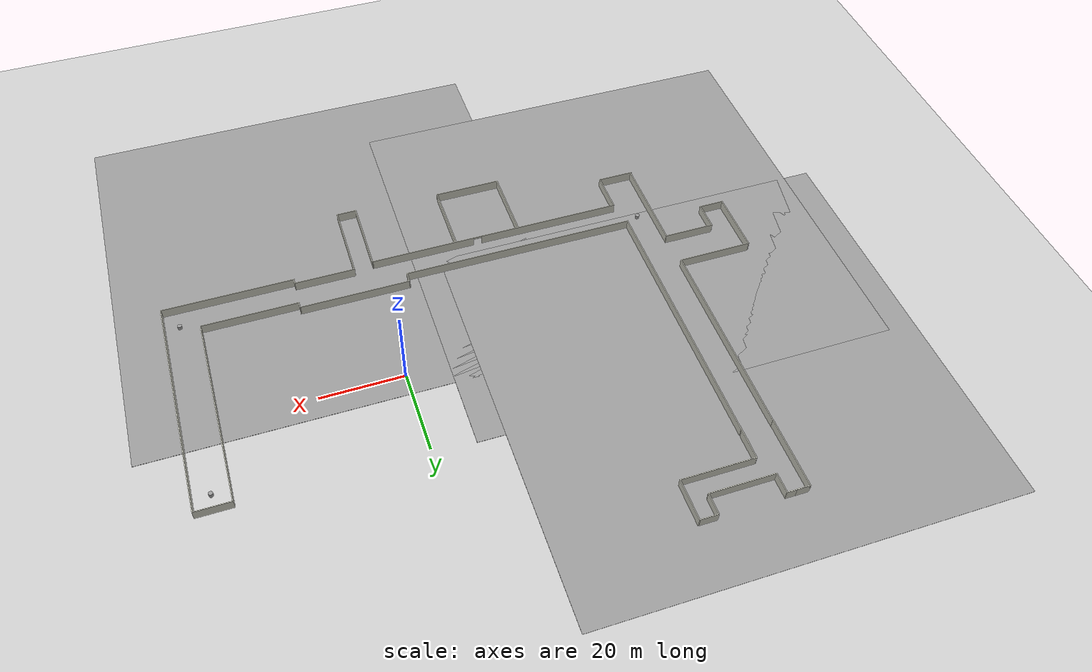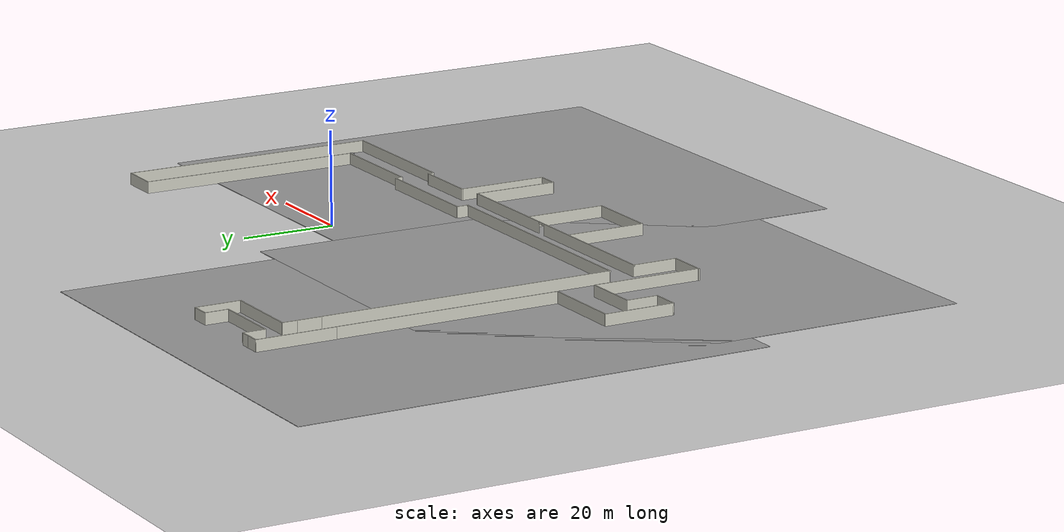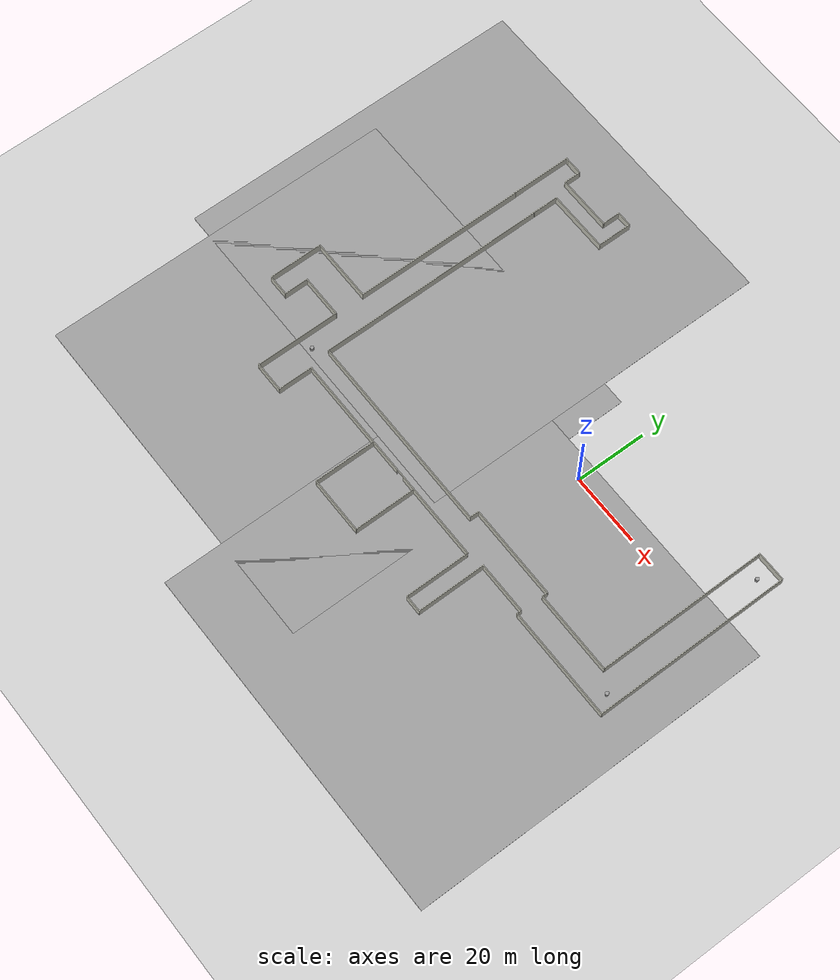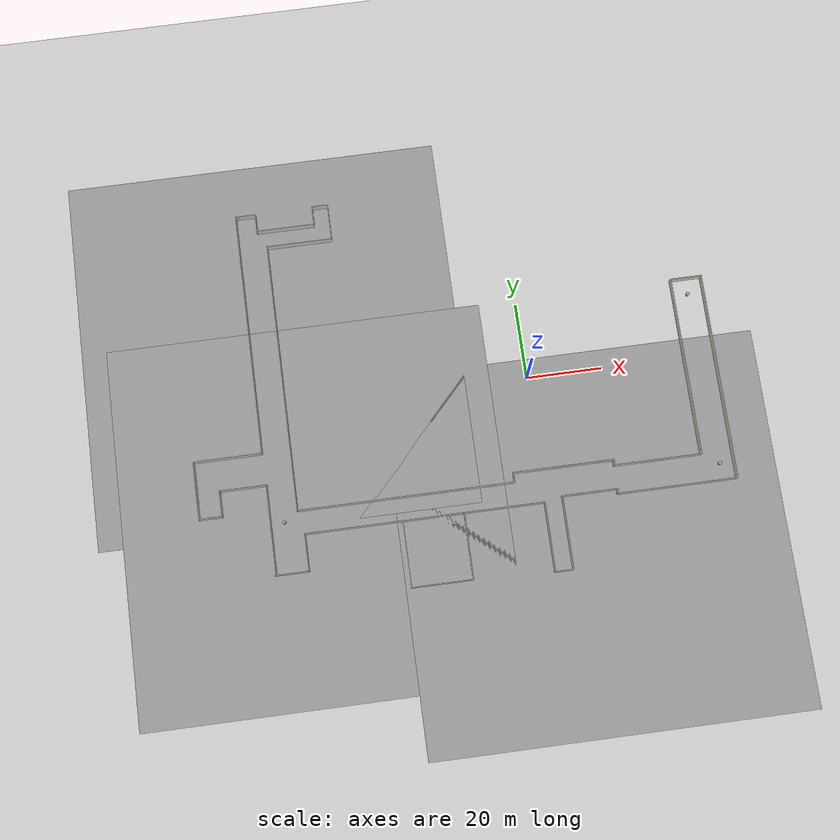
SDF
<sdf version="1.4">
 <world name="default">
  <light name="sun" type="directional">
   <pose>0 0 10 0 -0 0</pose>
   <diffuse>0.8 0.8 0.8 1</diffuse>
   <specular>0.2 0.2 0.2 1</specular>
   <attenuation>
    <range>1000</range>
    <constant>0.9</constant>
    <linear>0.01</linear>
    <quadratic>0.001</quadratic>
   </attenuation>
   <direction>-0.5 0.1 -0.9</direction>
  </light>
  <model name="ground_plane">
   <static>1</static>
   <link name="link">
    <collision name="collision">
     <geometry><plane><normal>0 0 1</normal><size>100 100</size></plane></geometry>
     <surface><friction><ode><mu>100</mu><mu2>50</mu2></ode></friction></surface>
    </collision>
    <visual name="visual">
     <cast_shadows>0</cast_shadows>
     <geometry><plane><normal>0 0 1</normal><size>100 100</size></plane></geometry>
     <material>
      <script><uri>file://media/materials/scripts/gazebo.material</uri><name>Gazebo/Grey</name></script>
     </material>
    </visual>
    <velocity_decay><linear>0</linear><angular>0</angular></velocity_decay>
   </link>
  </model>
  <physics type="ode">
   <max_step_size>0.001</max_step_size>
   <real_time_factor>1</real_time_factor>
   <real_time_update_rate>1000</real_time_update_rate>
   <gravity>0 0 -9.8</gravity>
  </physics>
  <scene><ambient>0.4 0.4 0.4 1</ambient><background>0.7 0.7 0.7 1</background><shadows>1</shadows></scene>
  <spherical_coordinates>
   <surface_model>EARTH_WGS84</surface_model>
   <latitude_deg>0</latitude_deg>
   <longitude_deg>0</longitude_deg>
   <elevation>0</elevation>
   <heading_deg>0</heading_deg>
  </spherical_coordinates>
  <model name="esat">
   <link name="Wall_27">
    <collision name="Wall_27_Collision">
     <geometry><box><size>47.7427 0.2 2.5</size></box></geometry>
     <pose>0 0 1.25 0 -0 0</pose>
    </collision>
    <visual name="Wall_27_Visual">
     <pose>0 0 1.25 0 -0 0</pose>
     <geometry><box><size>47.7427 0.2 2.5</size></box></geometry>
     <material>
      <script><uri>file://media/materials/scripts/gazebo.material</uri><name>Gazebo/PaintedWall</name></script>
     </material>
    </visual>
    <velocity_decay><linear>0</linear><angular>0</angular></velocity_decay>
    <pose>6.80118 1.41072 0 0 -0 1.5708</pose>
   </link>
   <link name="Wall_28">
    <collision name="Wall_28_Collision">
     <geometry><box><size>8.41418 0.2 2.5</size></box></geometry>
     <pose>0 0 1.25 0 -0 0</pose>
    </collision>
    <visual name="Wall_28_Visual">
     <pose>0 0 1.25 0 -0 0</pose>
     <geometry><box><size>8.41418 0.2 2.5</size></box></geometry>
     <material>
      <script><uri>file://media/materials/scripts/gazebo.material</uri><name>Gazebo/PaintedWall</name></script>
     </material>
    </visual>
    <velocity_decay><linear>0</linear><angular>0</angular></velocity_decay>
    <pose>10.9083 25.1821 0 0 -0 0</pose>
   </link>
   <link name="Wall_29">
    <collision name="Wall_29_Collision">
     <geometry><box><size>55.459 0.2 2.5</size></box></geometry>
     <pose>0 0 1.25 0 -0 0</pose>
    </collision>
    <visual name="Wall_29_Visual">
     <pose>0 0 1.25 0 -0 0</pose>
     <geometry><box><size>55.459 0.2 2.5</size></box></geometry>
     <material>
      <script><uri>file://media/materials/scripts/gazebo.material</uri><name>Gazebo/PaintedWall</name></script>
     </material>
    </visual>
    <velocity_decay><linear>0</linear><angular>0</angular></velocity_decay>
    <pose>15.0154 -2.44746 0 0 0 -1.5708</pose>
   </link>
   <link name="Wall_30">
    <collision name="Wall_30_Collision">
     <geometry><box><size>31.5632 0.2 2.5</size></box></geometry>
     <pose>0 0 1.25 0 -0 0</pose>
    </collision>
    <visual name="Wall_30_Visual">
     <pose>0 0 1.25 0 -0 0</pose>
     <geometry><box><size>31.5632 0.2 2.5</size></box></geometry>
     <material>
      <script><uri>file://media/materials/scripts/gazebo.material</uri><name>Gazebo/PaintedWall</name></script>
     </material>
    </visual>
    <velocity_decay><linear>0</linear><angular>0</angular></velocity_decay>
    <pose>-0.666259 -30.077 0 0 -0 3.14159</pose>
   </link>
   <link name="Wall_31">
    <collision name="Wall_31_Collision">
     <geometry><box><size>1.44457 0.2 2.5</size></box></geometry>
     <pose>0 0 1.25 0 -0 0</pose>
    </collision>
    <visual name="Wall_31_Visual">
     <pose>0 0 1.25 0 -0 0</pose>
     <geometry><box><size>1.44457 0.2 2.5</size></box></geometry>
     <material>
      <script><uri>file://media/materials/scripts/gazebo.material</uri><name>Gazebo/PaintedWall</name></script>
     </material>
    </visual>
    <velocity_decay><linear>0</linear><angular>0</angular></velocity_decay>
    <pose>-16.3479 -29.4547 0 0 -0 1.5708</pose>
   </link>
   <link name="Wall_32">
    <collision name="Wall_32_Collision">
     <geometry><box><size>14.637 0.2 2.5</size></box></geometry>
     <pose>0 0 1.25 0 -0 0</pose>
    </collision>
    <visual name="Wall_32_Visual">
     <pose>0 0 1.25 0 -0 0</pose>
     <geometry><box><size>14.637 0.2 2.5</size></box></geometry>
     <material>
      <script><uri>file://media/materials/scripts/gazebo.material</uri><name>Gazebo/PaintedWall</name></script>
     </material>
    </visual>
    <velocity_decay><linear>0</linear><angular>0</angular></velocity_decay>
    <pose>-23.5664 -28.8324 0 0 -0 3.14159</pose>
   </link>
   <link name="Wall_33">
    <collision name="Wall_33_Collision">
     <geometry><box><size>19.3664 0.2 2.5</size></box></geometry>
     <pose>0 0 1.25 0 -0 0</pose>
    </collision>
    <visual name="Wall_33_Visual">
     <pose>0 0 1.25 0 -0 0</pose>
     <geometry><box><size>19.3664 0.2 2.5</size></box></geometry>
     <material>
      <script><uri>file://media/materials/scripts/gazebo.material</uri><name>Gazebo/PaintedWall</name></script>
     </material>
    </visual>
    <velocity_decay><linear>0</linear><angular>0</angular></velocity_decay>
    <pose>-30.7849 -38.4156 0 0 0 -1.5708</pose>
   </link>
   <link name="Wall_34">
    <collision name="Wall_34_Collision">
     <geometry><box><size>4.92938 0.2 2.5</size></box></geometry>
     <pose>0 0 1.25 0 -0 0</pose>
    </collision>
    <visual name="Wall_34_Visual">
     <pose>0 0 1.25 0 -0 0</pose>
     <geometry><box><size>4.92938 0.2 2.5</size></box></geometry>
     <material>
      <script><uri>file://media/materials/scripts/gazebo.material</uri><name>Gazebo/PaintedWall</name></script>
     </material>
    </visual>
    <velocity_decay><linear>0</linear><angular>0</angular></velocity_decay>
    <pose>-33.1496 -47.9988 0 0 -0 3.14159</pose>
   </link>
   <link name="Wall_35">
    <collision name="Wall_35_Collision">
     <geometry><box><size>18.3708 0.2 2.5</size></box></geometry>
     <pose>0 0 1.25 0 -0 0</pose>
    </collision>
    <visual name="Wall_35_Visual">
     <pose>0 0 1.25 0 -0 0</pose>
     <geometry><box><size>18.3708 0.2 2.5</size></box></geometry>
     <material>
      <script><uri>file://media/materials/scripts/gazebo.material</uri><name>Gazebo/PaintedWall</name></script>
     </material>
    </visual>
    <velocity_decay><linear>0</linear><angular>0</angular></velocity_decay>
    <pose>-35.5143 -38.9134 0 0 -0 1.5708</pose>
   </link>
   <link name="Wall_36">
    <pose>-66.7531 -29.8281 0 0 -0 3.14159</pose>
    <visual name="Wall_36_Visual_0">
     <pose>-18.5769 0 1.25 0 -0 0</pose>
     <geometry><box><size>25.5238 0.2 2.5</size></box></geometry>
     <material>
      <script><uri>file://media/materials/scripts/gazebo.material</uri><name>Gazebo/PaintedWall</name></script>
     </material>
    </visual>
    <collision name="Wall_36_Collision_0">
     <geometry><box><size>25.5238 0.2 2.5</size></box></geometry>
     <pose>-18.5769 0 1.25 0 -0 0</pose>
    </collision>
    <visual name="Wall_36_Visual_2">
     <pose>13.8265 0 1.25 0 -0 0</pose>
     <geometry><box><size>35.0245 0.2 2.5</size></box></geometry>
     <material>
      <script><uri>file://media/materials/scripts/gazebo.material</uri><name>Gazebo/PaintedWall</name></script>
     </material>
    </visual>
    <collision name="Wall_36_Collision_2">
     <geometry><box><size>35.0245 0.2 2.5</size></box></geometry>
     <pose>13.8265 0 1.25 0 -0 0</pose>
    </collision>
    <visual name="Wall_36_Visual_3">
     <pose>-5.2515 0 2.25 0 -0 0</pose>
     <geometry><box><size>1.25 0.2 0.5</size></box></geometry>
     <material>
      <script><uri>file://media/materials/scripts/gazebo.material</uri><name>Gazebo/PaintedWall</name></script>
     </material>
    </visual>
    <collision name="Wall_36_Collision_3">
     <geometry><box><size>1.25 0.2 0.5</size></box></geometry>
     <pose>-5.2515 0 2.25 0 -0 0</pose>
    </collision>
    <visual name="Wall_36_Visual_4">
     <pose>-4.18572 0 2.25 0 -0 0</pose>
     <geometry><box><size>1 0.2 0.5</size></box></geometry>
     <material>
      <script><uri>file://media/materials/scripts/gazebo.material</uri><name>Gazebo/PaintedWall</name></script>
     </material>
    </visual>
    <collision name="Wall_36_Collision_4">
     <geometry><box><size>1 0.2 0.5</size></box></geometry>
     <pose>-4.18572 0 2.25 0 -0 0</pose>
    </collision>
    <velocity_decay><linear>0</linear><angular>0</angular></velocity_decay>
   </link>
   <link name="Wall_37">
    <collision name="Wall_37_Collision">
     <geometry><box><size>9.90767 0.2 2.5</size></box></geometry>
     <pose>0 0 1.25 0 -0 0</pose>
    </collision>
    <visual name="Wall_37_Visual">
     <pose>0 0 1.25 0 -0 0</pose>
     <geometry><box><size>9.90767 0.2 2.5</size></box></geometry>
     <material>
      <script><uri>file://media/materials/scripts/gazebo.material</uri><name>Gazebo/PaintedWall</name></script>
     </material>
    </visual>
    <velocity_decay><linear>0</linear><angular>0</angular></velocity_decay>
    <pose>-97.9919 -34.6819 0 0 0 -1.5708</pose>
   </link>
   <link name="Wall_38">
    <collision name="Wall_38_Collision">
     <geometry><box><size>8.91201 0.2 2.5</size></box></geometry>
     <pose>0 0 1.25 0 -0 0</pose>
    </collision>
    <visual name="Wall_38_Visual">
     <pose>0 0 1.25 0 -0 0</pose>
     <geometry><box><size>8.91201 0.2 2.5</size></box></geometry>
     <material>
      <script><uri>file://media/materials/scripts/gazebo.material</uri><name>Gazebo/PaintedWall</name></script>
     </material>
    </visual>
    <velocity_decay><linear>0</linear><angular>0</angular></velocity_decay>
    <pose>-102.348 -39.5357 0 0 -0 3.14159</pose>
   </link>
   <link name="Wall_40">
    <collision name="Wall_40_Collision">
     <geometry><box><size>23.8469 0.2 2.5</size></box></geometry>
     <pose>0 0 1.25 0 -0 0</pose>
    </collision>
    <visual name="Wall_40_Visual">
     <pose>0 0 1.25 0 -0 0</pose>
     <geometry><box><size>23.8469 0.2 2.5</size></box></geometry>
     <material>
      <script><uri>file://media/materials/scripts/gazebo.material</uri><name>Gazebo/PaintedWall</name></script>
     </material>
    </visual>
    <velocity_decay><linear>0</linear><angular>0</angular></velocity_decay>
    <pose>-106.455 -27.7123 0 0 -0 1.5708</pose>
   </link>
   <link name="Wall_41">
    <collision name="Wall_41_Collision">
     <geometry><box><size>12.3968 0.2 2.5</size></box></geometry>
     <pose>0 0 1.25 0 -0 0</pose>
    </collision>
    <visual name="Wall_41_Visual">
     <pose>0 0 1.25 0 -0 0</pose>
     <geometry><box><size>12.3968 0.2 2.5</size></box></geometry>
     <material>
      <script><uri>file://media/materials/scripts/gazebo.material</uri><name>Gazebo/PaintedWall</name></script>
     </material>
    </visual>
    <velocity_decay><linear>0</linear><angular>0</angular></velocity_decay>
    <pose>-112.553 -15.8888 0 0 -0 3.14159</pose>
   </link>
   <link name="Wall_42">
    <collision name="Wall_42_Collision">
     <geometry><box><size>6.92069 0.2 2.5</size></box></geometry>
     <pose>0 0 1.25 0 -0 0</pose>
    </collision>
    <visual name="Wall_42_Visual">
     <pose>0 0 1.25 0 -0 0</pose>
     <geometry><box><size>6.92069 0.2 2.5</size></box></geometry>
     <material>
      <script><uri>file://media/materials/scripts/gazebo.material</uri><name>Gazebo/PaintedWall</name></script>
     </material>
    </visual>
    <velocity_decay><linear>0</linear><angular>0</angular></velocity_decay>
    <pose>-118.652 -19.2492 0 0 0 -1.5708</pose>
   </link>
   <link name="Wall_43">
    <collision name="Wall_43_Collision">
     <geometry><box><size>6.17395 0.2 2.5</size></box></geometry>
     <pose>0 0 1.25 0 -0 0</pose>
    </collision>
    <visual name="Wall_43_Visual">
     <pose>0 0 1.25 0 -0 0</pose>
     <geometry><box><size>6.17395 0.2 2.5</size></box></geometry>
     <material>
      <script><uri>file://media/materials/scripts/gazebo.material</uri><name>Gazebo/PaintedWall</name></script>
     </material>
    </visual>
    <velocity_decay><linear>0</linear><angular>0</angular></velocity_decay>
    <pose>-121.639 -22.6095 0 0 -0 3.14159</pose>
   </link>
   <link name="Wall_44">
    <collision name="Wall_44_Collision">
     <geometry><box><size>15.3838 0.2 2.5</size></box></geometry>
     <pose>0 0 1.25 0 -0 0</pose>
    </collision>
    <visual name="Wall_44_Visual">
     <pose>0 0 1.25 0 -0 0</pose>
     <geometry><box><size>15.3838 0.2 2.5</size></box></geometry>
     <material>
      <script><uri>file://media/materials/scripts/gazebo.material</uri><name>Gazebo/PaintedWall</name></script>
     </material>
    </visual>
    <velocity_decay><linear>0</linear><angular>0</angular></velocity_decay>
    <pose>-124.626 -15.0176 0 0 -0 1.5708</pose>
   </link>
   <link name="Wall_45">
    <collision name="Wall_45_Collision">
     <geometry><box><size>18.1218 0.2 2.5</size></box></geometry>
     <pose>0 0 1.25 0 -0 0</pose>
    </collision>
    <visual name="Wall_45_Visual">
     <pose>0 0 1.25 0 -0 0</pose>
     <geometry><box><size>18.1218 0.2 2.5</size></box></geometry>
     <material>
      <script><uri>file://media/materials/scripts/gazebo.material</uri><name>Gazebo/PaintedWall</name></script>
     </material>
    </visual>
    <velocity_decay><linear>0</linear><angular>0</angular></velocity_decay>
    <pose>-115.665 -7.42575 0 0 -0 0</pose>
   </link>
   <link name="Wall_46">
    <collision name="Wall_46_Collision">
     <geometry><box><size>48.7383 0.2 2.5</size></box></geometry>
     <pose>0 0 1.25 0 -0 0</pose>
    </collision>
    <visual name="Wall_46_Visual">
     <pose>0 0 1.25 0 -0 0</pose>
     <geometry><box><size>48.7383 0.2 2.5</size></box></geometry>
     <material>
      <script><uri>file://media/materials/scripts/gazebo.material</uri><name>Gazebo/PaintedWall</name></script>
     </material>
    </visual>
    <velocity_decay><linear>0</linear><angular>0</angular></velocity_decay>
    <pose>-106.704 16.8434 0 0 -0 1.5708</pose>
   </link>
   <link name="Wall_52">
    <collision name="Wall_52_Collision">
     <geometry><box><size>23.1001 0.2 2.5</size></box></geometry>
     <pose>0 0 1.25 0 -0 0</pose>
    </collision>
    <visual name="Wall_52_Visual">
     <pose>0 0 1.25 0 -0 0</pose>
     <geometry><box><size>23.1001 0.2 2.5</size></box></geometry>
     <material>
      <script><uri>file://media/materials/scripts/gazebo.material</uri><name>Gazebo/PaintedWall</name></script>
     </material>
    </visual>
    <velocity_decay><linear>0</linear><angular>0</angular></velocity_decay>
    <pose>-4.64889 -22.6095 0 0 -0 3.14159</pose>
   </link>
   <link name="Wall_53">
    <collision name="Wall_53_Collision">
     <geometry><box><size>1.69349 0.2 2.5</size></box></geometry>
     <pose>0 0 1.25 0 -0 0</pose>
    </collision>
    <visual name="Wall_53_Visual">
     <pose>0 0 1.25 0 -0 0</pose>
     <geometry><box><size>1.69349 0.2 2.5</size></box></geometry>
     <material>
      <script><uri>file://media/materials/scripts/gazebo.material</uri><name>Gazebo/PaintedWall</name></script>
     </material>
    </visual>
    <velocity_decay><linear>0</linear><angular>0</angular></velocity_decay>
    <pose>-16.099 -21.8628 0 0 -0 1.5708</pose>
   </link>
   <link name="Wall_54">
    <collision name="Wall_54_Collision">
     <geometry><box><size>26.5849 0.2 2.5</size></box></geometry>
     <pose>0 0 1.25 0 -0 0</pose>
    </collision>
    <visual name="Wall_54_Visual">
     <pose>0 0 1.25 0 -0 0</pose>
     <geometry><box><size>26.5849 0.2 2.5</size></box></geometry>
     <material>
      <script><uri>file://media/materials/scripts/gazebo.material</uri><name>Gazebo/PaintedWall</name></script>
     </material>
    </visual>
    <velocity_decay><linear>0</linear><angular>0</angular></velocity_decay>
    <pose>-29.2914 -21.1161 0 0 -0 3.14159</pose>
   </link>
   <link name="Wall_55">
    <collision name="Wall_55_Collision">
     <geometry><box><size>2.68915 0.2 2.5</size></box></geometry>
     <pose>0 0 1.25 0 -0 0</pose>
    </collision>
    <visual name="Wall_55_Visual">
     <pose>0 0 1.25 0 -0 0</pose>
     <geometry><box><size>2.68915 0.2 2.5</size></box></geometry>
     <material>
      <script><uri>file://media/materials/scripts/gazebo.material</uri><name>Gazebo/PaintedWall</name></script>
     </material>
    </visual>
    <velocity_decay><linear>0</linear><angular>0</angular></velocity_decay>
    <pose>-42.4839 -22.3606 0 0 0 -1.5708</pose>
   </link>
   <link name="Wall_56">
    <collision name="Wall_56_Collision">
     <geometry><box><size>56.9525 0.2 2.5</size></box></geometry>
     <pose>0 0 1.25 0 -0 0</pose>
    </collision>
    <visual name="Wall_56_Visual">
     <pose>0 0 1.25 0 -0 0</pose>
     <geometry><box><size>56.9525 0.2 2.5</size></box></geometry>
     <material>
      <script><uri>file://media/materials/scripts/gazebo.material</uri><name>Gazebo/PaintedWall</name></script>
     </material>
    </visual>
    <velocity_decay><linear>0</linear><angular>0</angular></velocity_decay>
    <pose>-70.8602 -23.6052 0 0 -0 3.14159</pose>
   </link>
   <link name="Wall_57">
    <collision name="Wall_57_Collision">
     <geometry><box><size>64.9178 0.2 2.5</size></box></geometry>
     <pose>0 0 1.25 0 -0 0</pose>
    </collision>
    <visual name="Wall_57_Visual">
     <pose>0 0 1.25 0 -0 0</pose>
     <geometry><box><size>64.9178 0.2 2.5</size></box></geometry>
     <material>
      <script><uri>file://media/materials/scripts/gazebo.material</uri><name>Gazebo/PaintedWall</name></script>
     </material>
    </visual>
    <velocity_decay><linear>0</linear><angular>0</angular></velocity_decay>
    <pose>-99.2364 8.7537 0 0 -0 1.5708</pose>
   </link>
   <link name="Wall_59">
    <collision name="Wall_59_Collision">
     <geometry><box><size>7.16961 0.2 2.5</size></box></geometry>
     <pose>0 0 1.25 0 -0 0</pose>
    </collision>
    <visual name="Wall_59_Visual">
     <pose>0 0 1.25 0 -0 0</pose>
     <geometry><box><size>7.16961 0.2 2.5</size></box></geometry>
     <material>
      <script><uri>file://media/materials/scripts/gazebo.material</uri><name>Gazebo/PaintedWall</name></script>
     </material>
    </visual>
    <velocity_decay><linear>0</linear><angular>0</angular></velocity_decay>
    <pose>-99.2364 45.0952 0 0 -0 1.5708</pose>
   </link>
   <link name="Wall_60">
    <collision name="Wall_60_Collision">
     <geometry><box><size>17.624 0.2 2.5</size></box></geometry>
     <pose>0 0 1.25 0 -0 0</pose>
    </collision>
    <visual name="Wall_60_Visual">
     <pose>0 0 1.25 0 -0 0</pose>
     <geometry><box><size>17.624 0.2 2.5</size></box></geometry>
     <material>
      <script><uri>file://media/materials/scripts/gazebo.material</uri><name>Gazebo/PaintedWall</name></script>
     </material>
    </visual>
    <velocity_decay><linear>0</linear><angular>0</angular></velocity_decay>
    <pose>-90.5244 48.58 0 0 -0 0</pose>
   </link>
   <link name="Wall_61">
    <collision name="Wall_61_Collision">
     <geometry><box><size>9.90767 0.2 2.5</size></box></geometry>
     <pose>0 0 1.25 0 -0 0</pose>
    </collision>
    <visual name="Wall_61_Visual">
     <pose>0 0 1.25 0 -0 0</pose>
     <geometry><box><size>9.90767 0.2 2.5</size></box></geometry>
     <material>
      <script><uri>file://media/materials/scripts/gazebo.material</uri><name>Gazebo/PaintedWall</name></script>
     </material>
    </visual>
    <velocity_decay><linear>0</linear><angular>0</angular></velocity_decay>
    <pose>-81.8124 53.4339 0 0 -0 1.5708</pose>
   </link>
   <link name="Wall_62">
    <collision name="Wall_62_Collision">
     <geometry><box><size>4.43155 0.2 2.5</size></box></geometry>
     <pose>0 0 1.25 0 -0 0</pose>
    </collision>
    <visual name="Wall_62_Visual">
     <pose>0 0 1.25 0 -0 0</pose>
     <geometry><box><size>4.43155 0.2 2.5</size></box></geometry>
     <material>
      <script><uri>file://media/materials/scripts/gazebo.material</uri><name>Gazebo/PaintedWall</name></script>
     </material>
    </visual>
    <velocity_decay><linear>0</linear><angular>0</angular></velocity_decay>
    <pose>-83.9282 58.2877 0 0 -0 3.14159</pose>
   </link>
   <link name="Wall_63">
    <collision name="Wall_63_Collision">
     <geometry><box><size>5.17829 0.2 2.5</size></box></geometry>
     <pose>0 0 1.25 0 -0 0</pose>
    </collision>
    <visual name="Wall_63_Visual">
     <pose>0 0 1.25 0 -0 0</pose>
     <geometry><box><size>5.17829 0.2 2.5</size></box></geometry>
     <material>
      <script><uri>file://media/materials/scripts/gazebo.material</uri><name>Gazebo/PaintedWall</name></script>
     </material>
    </visual>
    <velocity_decay><linear>0</linear><angular>0</angular></velocity_decay>
    <pose>-86.044 55.7985 0 0 0 -1.5708</pose>
   </link>
   <link name="Wall_64">
    <collision name="Wall_64_Collision">
     <geometry><box><size>15.6327 0.2 2.5</size></box></geometry>
     <pose>0 0 1.25 0 -0 0</pose>
    </collision>
    <visual name="Wall_64_Visual">
     <pose>0 0 1.25 0 -0 0</pose>
     <geometry><box><size>15.6327 0.2 2.5</size></box></geometry>
     <material>
      <script><uri>file://media/materials/scripts/gazebo.material</uri><name>Gazebo/PaintedWall</name></script>
     </material>
    </visual>
    <velocity_decay><linear>0</linear><angular>0</angular></velocity_decay>
    <pose>-93.7603 53.3094 0 0 -0 3.14159</pose>
   </link>
   <link name="Wall_65">
    <collision name="Wall_65_Collision">
     <geometry><box><size>4.92938 0.2 2.5</size></box></geometry>
     <pose>0 0 1.25 0 -0 0</pose>
    </collision>
    <visual name="Wall_65_Visual">
     <pose>0 0 1.25 0 -0 0</pose>
     <geometry><box><size>4.92938 0.2 2.5</size></box></geometry>
     <material>
      <script><uri>file://media/materials/scripts/gazebo.material</uri><name>Gazebo/PaintedWall</name></script>
     </material>
    </visual>
    <velocity_decay><linear>0</linear><angular>0</angular></velocity_decay>
    <pose>-101.477 55.6741 0 0 -0 1.5708</pose>
   </link>
   <link name="Wall_66">
    <collision name="Wall_66_Collision">
     <geometry><box><size>4.68046 0.2 2.5</size></box></geometry>
     <pose>0 0 1.25 0 -0 0</pose>
    </collision>
    <visual name="Wall_66_Visual">
     <pose>0 0 1.25 0 -0 0</pose>
     <geometry><box><size>4.68046 0.2 2.5</size></box></geometry>
     <material>
      <script><uri>file://media/materials/scripts/gazebo.material</uri><name>Gazebo/PaintedWall</name></script>
     </material>
    </visual>
    <velocity_decay><linear>0</linear><angular>0</angular></velocity_decay>
    <pose>-103.717 58.0388 0 0 -0 3.14159</pose>
   </link>
   <link name="Wall_68">
    <collision name="Wall_68_Collision">
     <geometry><box><size>17.1262 0.2 2.5</size></box></geometry>
     <pose>0 0 1.25 0 -0 0</pose>
    </collision>
    <visual name="Wall_68_Visual">
     <pose>0 0 1.25 0 -0 0</pose>
     <geometry><box><size>17.1262 0.2 2.5</size></box></geometry>
     <material>
      <script><uri>file://media/materials/scripts/gazebo.material</uri><name>Gazebo/PaintedWall</name></script>
     </material>
    </visual>
    <velocity_decay><linear>0</linear><angular>0</angular></velocity_decay>
    <pose>-106.764 49.583 0 0 -0 1.5708</pose>
   </link>
   <link name="Wall_69">
    <collision name="Wall_69_Collision">
     <geometry><box><size>3.18697 0.2 2.5</size></box></geometry>
     <pose>0 0 1.25 0 -0 0</pose>
    </collision>
    <visual name="Wall_69_Visual">
     <pose>0 0 1.25 0 -0 0</pose>
     <geometry><box><size>3.18697 0.2 2.5</size></box></geometry>
     <material>
      <script><uri>file://media/materials/scripts/gazebo.material</uri><name>Gazebo/PaintedWall</name></script>
     </material>
    </visual>
    <velocity_decay><linear>0</linear><angular>0</angular></velocity_decay>
    <pose>-105.27 58.0461 0 0 -0 0</pose>
   </link>
   <link name="Wall_72">
    <collision name="Wall_72_Collision">
     <geometry><box><size>5.17829 0.2 2.5</size></box></geometry>
     <pose>0 0 1.25 0 -0 0</pose>
    </collision>
    <visual name="Wall_72_Visual">
     <pose>0 0 1.25 0 -0 0</pose>
     <geometry><box><size>5.17829 0.2 2.5</size></box></geometry>
     <material>
      <script><uri>file://media/materials/scripts/gazebo.material</uri><name>Gazebo/PaintedWall</name></script>
     </material>
    </visual>
    <velocity_decay><linear>0</linear><angular>0</angular></velocity_decay>
    <pose>-99.2964 42.8623 0 0 -0 1.5708</pose>
   </link>
   <link name="Wall_74">
    <collision name="Wall_74_Collision">
     <geometry><box><size>17.3276 0.2 2.5</size></box></geometry>
     <pose>0 0 1.25 0 -0 0</pose>
    </collision>
    <visual name="Wall_74_Visual">
     <pose>0 0 1.25 0 -0 0</pose>
     <geometry><box><size>17.3276 0.2 2.5</size></box></geometry>
     <material>
      <script><uri>file://media/materials/scripts/gazebo.material</uri><name>Gazebo/PaintedWall</name></script>
     </material>
    </visual>
    <velocity_decay><linear>0</linear><angular>0</angular></velocity_decay>
    <pose>-56.5445 -38.6112 0 0 0 -1.5708</pose>
   </link>
   <link name="Wall_75">
    <collision name="Wall_75_Collision">
     <geometry><box><size>16.1983 0.2 2.5</size></box></geometry>
     <pose>0 0 1.25 0 -0 0</pose>
    </collision>
    <visual name="Wall_75_Visual">
     <pose>0 0 1.25 0 -0 0</pose>
     <geometry><box><size>16.1983 0.2 2.5</size></box></geometry>
     <material>
      <script><uri>file://media/materials/scripts/gazebo.material</uri><name>Gazebo/PaintedWall</name></script>
     </material>
    </visual>
    <velocity_decay><linear>0</linear><angular>0</angular></velocity_decay>
    <pose>-64.5436 -47.175 0 0 -0 3.14159</pose>
   </link>
   <link name="Wall_76">
    <collision name="Wall_76_Collision">
     <geometry><box><size>17.3276 0.2 2.5</size></box></geometry>
     <pose>0 0 1.25 0 -0 0</pose>
    </collision>
    <visual name="Wall_76_Visual">
     <pose>0 0 1.25 0 -0 0</pose>
     <geometry><box><size>17.3276 0.2 2.5</size></box></geometry>
     <material>
      <script><uri>file://media/materials/scripts/gazebo.material</uri><name>Gazebo/PaintedWall</name></script>
     </material>
    </visual>
    <velocity_decay><linear>0</linear><angular>0</angular></velocity_decay>
    <pose>-72.5428 -38.6112 0 0 -0 1.5708</pose>
   </link>
   <static>1</static>
   <pose>35 -4 0 0 -0 0</pose>
  </model>
  <model name="ground_plane_0">
   <static>1</static>
   <link name="link">
    <collision name="collision">
     <geometry><plane><normal>0 0 1</normal><size>100 100</size></plane></geometry>
     <surface><friction><ode><mu>100</mu><mu2>50</mu2></ode></friction></surface>
    </collision>
    <visual name="visual">
     <cast_shadows>0</cast_shadows>
     <geometry><plane><normal>0 0 1</normal><size>100 100</size></plane></geometry>
     <material>
      <script><uri>file://media/materials/scripts/gazebo.material</uri><name>Gazebo/Grey</name></script>
     </material>
    </visual>
    <velocity_decay><linear>0</linear><angular>0</angular></velocity_decay>
   </link>
   <pose>-66.4821 18.5255 0 0 -0 0</pose>
  </model>
  <model name="ground_plane_1">
   <static>1</static>
   <link name="link">
    <collision name="collision">
     <geometry><plane><normal>0 0 1</normal><size>100 100</size></plane></geometry>
     <surface><friction><ode><mu>100</mu><mu2>50</mu2></ode></friction></surface>
    </collision>
    <visual name="visual">
     <cast_shadows>0</cast_shadows>
     <geometry><plane><normal>0 0 1</normal><size>100 100</size></plane></geometry>
     <material>
      <script><uri>file://media/materials/scripts/gazebo.material</uri><name>Gazebo/Grey</name></script>
     </material>
    </visual>
    <velocity_decay><linear>0</linear><angular>0</angular></velocity_decay>
   </link>
   <pose>-60 -28.423 0 0 -0 0</pose>
  </model>
  <model name="ground_plane_2">
   <static>1</static>
   <link name="link">
    <collision name="collision">
     <geometry><plane><normal>0 0 1</normal><size>100 100</size></plane></geometry>
     <surface><friction><ode><mu>100</mu><mu2>50</mu2></ode></friction></surface>
    </collision>
    <visual name="visual">
     <cast_shadows>0</cast_shadows>
     <geometry><plane><normal>0 0 1</normal><size>100 100</size></plane></geometry>
     <material>
      <script><uri>file://media/materials/scripts/gazebo.material</uri><name>Gazebo/Grey</name></script>
     </material>
    </visual>
    <velocity_decay><linear>0</linear><angular>0</angular></velocity_decay>
   </link>
   <pose>11 -45 0 0 -0 0</pose>
  </model>
  <model name="unit_cylinder_1">
   <pose>46 17 0.499992 0 -0 0</pose>
   <link name="link">
    <inertial>
     <mass>1</mass>
     <inertia><ixx>1</ixx><ixy>0</ixy><ixz>0</ixz><iyy>1</iyy><iyz>0</iyz><izz>1</izz></inertia>
    </inertial>
    <collision name="collision">
     <geometry><cylinder><radius>0.5</radius><length>1</length></cylinder></geometry>
    </collision>
    <visual name="visual">
     <geometry><cylinder><radius>0.5</radius><length>1</length></cylinder></geometry>
     <material>
      <script><uri>file://media/materials/scripts/gazebo.material</uri><name>Gazebo/Grey</name></script>
     </material>
    </visual>
    <velocity_decay><linear>0</linear><angular>0</angular></velocity_decay>
   </link>
   <static>0</static>
  </model>
  <model name="unit_cylinder_2">
   <pose>46.5377 -29.4966 0.499998 0 -0 0</pose>
   <link name="link">
    <inertial>
     <mass>1</mass>
     <inertia><ixx>1</ixx><ixy>0</ixy><ixz>0</ixz><iyy>1</iyy><iyz>0</iyz><izz>1</izz></inertia>
    </inertial>
    <collision name="collision">
     <geometry><cylinder><radius>0.5</radius><length>1</length></cylinder></geometry>
    </collision>
    <visual name="visual">
     <geometry><cylinder><radius>0.5</radius><length>1</length></cylinder></geometry>
     <material>
      <script><uri>file://media/materials/scripts/gazebo.material</uri><name>Gazebo/Grey</name></script>
     </material>
    </visual>
    <velocity_decay><linear>0</linear><angular>0</angular></velocity_decay>
   </link>
   <static>0</static>
  </model>
  <model name="unit_cylinder_3">
   <pose>-68 -30 0.499992 0 -0 0</pose>
   <link name="link">
    <inertial>
     <mass>1</mass>
     <inertia><ixx>1</ixx><ixy>0</ixy><ixz>0</ixz><iyy>1</iyy><iyz>0</iyz><izz>1</izz></inertia>
    </inertial>
    <collision name="collision">
     <geometry><cylinder><radius>0.5</radius><length>1</length></cylinder></geometry>
    </collision>
    <visual name="visual">
     <geometry><cylinder><radius>0.5</radius><length>1</length></cylinder></geometry>
     <material>
      <script><uri>file://media/materials/scripts/gazebo.material</uri><name>Gazebo/Grey</name></script>
     </material>
    </visual>
    <velocity_decay><linear>0</linear><angular>0</angular></velocity_decay>
   </link>
   <static>0</static>
  </model>
 </world>
</sdf>
